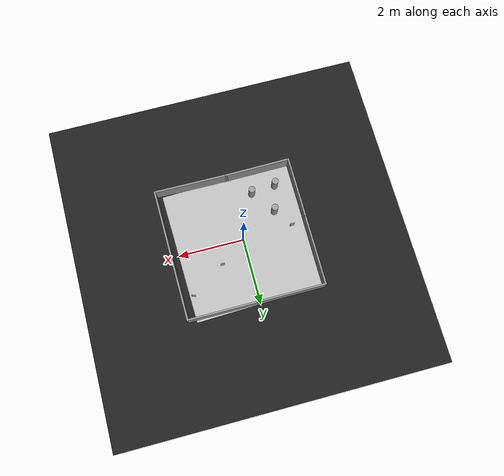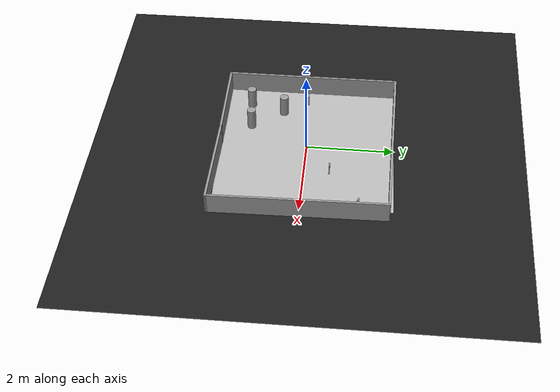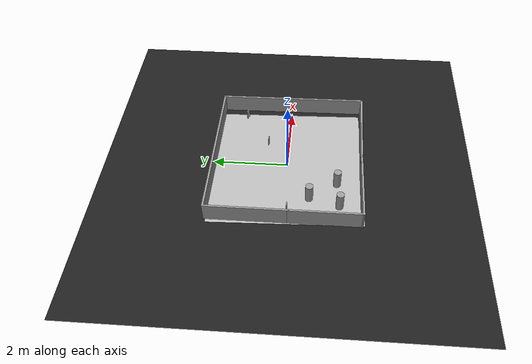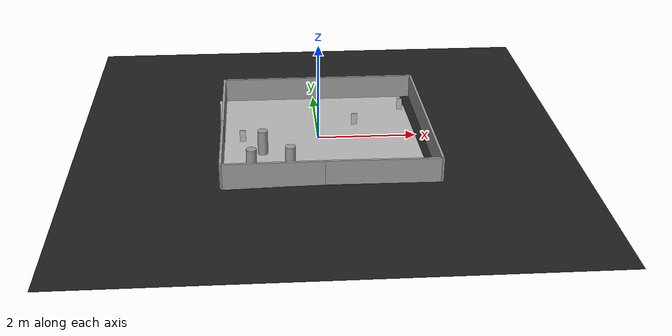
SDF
<sdf version="1.7">
 <world name="default">
  <scene>
   <ambient>0 0 0 1</ambient>
   <shadows>0</shadows>
   <grid>0</grid>
   <background>0.7 0.7 0.7 1</background>
  </scene>
  <model name="course">
   <static>1</static>
   <link name="course_link">
    <collision name="course_collision">
     <geometry><plane><normal>0 0 1</normal><size>4 4</size></plane></geometry>
     <surface><friction><ode><mu>100</mu><mu2>50</mu2></ode></friction></surface>
    </collision>
    <visual name="course_visual">
     <cast_shadows>0</cast_shadows>
     <geometry><plane><normal>0 0 1</normal><size>4 4</size></plane></geometry>
     <material>
      <script>
       <uri>model://turtlebot3_autorace/course/materials/scripts</uri>
       <uri>model://turtlebot3_autorace/course/materials/textures</uri>
       <name>course</name>
      </script>
     </material>
    </visual>
   </link>
   <pose>0 0 0 0 0 -1.54</pose>
  </model>
  <model name="traffic_parking">
   <static>1</static>
   <link name="box">
    <collision name="collision"><geometry><box><size>0.12 0.025 0.25</size></box></geometry></collision>
    <visual name="visual">
     <geometry><box><size>0.12 0.025 0.25</size></box></geometry>
     <material>
      <script>
       <uri>model://turtlebot3_autorace/traffic_parking/materials/scripts</uri>
       <uri>model://turtlebot3_autorace/traffic_parking/materials/textures</uri>
       <name>traffic_parking</name>
      </script>
     </material>
    </visual>
   </link>
   <pose>1.84 1.27 0.13 0 0 -0.356</pose>
  </model>
  <model name="traffic_tunnel">
   <pose>-1.54401 -0.073386 0.125004 -2e-06 -7.1e-05 0.000128</pose>
   <link name="box">
    <collision name="collision"><geometry><box><size>0.12 0.025 0.25</size></box></geometry></collision>
    <visual name="visual">
     <geometry><box><size>0.12 0.025 0.25</size></box></geometry>
     <material>
      <script>
       <uri>model://turtlebot3_autorace/traffic_tunnel/materials/scripts</uri>
       <uri>model://turtlebot3_autorace/traffic_tunnel/materials/textures</uri>
       <name>traffic_tunnel</name>
      </script>
     </material>
    </visual>
    <inertial>
     <inertia><ixx>1</ixx><ixy>0</ixy><ixz>0</ixz><iyy>1</iyy><iyz>0</iyz><izz>1</izz></inertia>
     <mass>1</mass>
    </inertial>
   </link>
  </model>
  <model name="traffic_stop">
   <static>1</static>
   <link name="box">
    <collision name="collision"><geometry><box><size>0.12 0.025 0.25</size></box></geometry></collision>
    <visual name="visual">
     <geometry><box><size>0.12 0.025 0.25</size></box></geometry>
     <material>
      <script>
       <uri>model://turtlebot3_autorace/traffic_stop/materials/scripts</uri>
       <uri>model://turtlebot3_autorace/traffic_stop/materials/textures</uri>
       <name>traffic_stop</name>
      </script>
     </material>
    </visual>
   </link>
   <pose>0.788892 0.578813 0.125 0 -0 0</pose>
  </model>
  <light name="sun" type="directional">
   <pose>0 0 10 0 -0 0</pose>
   <diffuse>0.8 0.8 0.8 1</diffuse>
   <specular>0.1 0.1 0.1 1</specular>
   <attenuation>
    <range>1000</range>
    <constant>0.9</constant>
    <linear>0.01</linear>
    <quadratic>0.001</quadratic>
   </attenuation>
   <direction>-0.5 0.5 -1</direction>
   <spot><inner_angle>0</inner_angle><outer_angle>0</outer_angle><falloff>0</falloff></spot>
  </light>
  <model name="ground2">
   <pose>0.081614 0.024079 -0.1 0 -0 0</pose>
   <static>1</static>
   <link name="ground">
    <collision name="ground_coll"><geometry><box><size>8 8 0.01</size></box></geometry></collision>
    <visual name="ground_vis">
     <geometry><box><size>10 10 0.01</size></box></geometry>
     <material>
      <script><uri>file://media/materials/scripts/gazebo.material</uri><name>Gazebo/FlatBlack</name></script>
     </material>
    </visual>
   </link>
  </model>
  <gravity>0 0 -9.8</gravity>
  <magnetic_field>6e-06 2.3e-05 -4.2e-05</magnetic_field>
  <atmosphere type="adiabatic"/>
  <physics name="default_physics" default="0" type="ode">
   <max_step_size>0.001</max_step_size>
   <real_time_factor>1</real_time_factor>
   <real_time_update_rate>1000</real_time_update_rate>
  </physics>
  <spherical_coordinates>
   <surface_model>EARTH_WGS84</surface_model>
   <latitude_deg>0</latitude_deg>
   <longitude_deg>0</longitude_deg>
   <elevation>0</elevation>
   <heading_deg>0</heading_deg>
  </spherical_coordinates>
  <light name="user_point_light_2" type="point">
   <pose>-0.948146 0.604519 1 0 -0 0</pose>
   <diffuse>0.5 0.5 0.5 1</diffuse>
   <specular>0.1 0.1 0.1 1</specular>
   <attenuation>
    <range>20</range>
    <constant>0.5</constant>
    <linear>0.01</linear>
    <quadratic>0.001</quadratic>
   </attenuation>
   <cast_shadows>0</cast_shadows>
   <direction>0 0 -1</direction>
   <spot><inner_angle>0</inner_angle><outer_angle>0</outer_angle><falloff>0</falloff></spot>
  </light>
  <light name="user_point_light_6" type="point">
   <pose>1.63854 1.69565 1 0 -0 0</pose>
   <diffuse>0.5 0.5 0.5 1</diffuse>
   <specular>0.1 0.1 0.1 1</specular>
   <attenuation>
    <range>20</range>
    <constant>0.5</constant>
    <linear>0.01</linear>
    <quadratic>0.001</quadratic>
   </attenuation>
   <cast_shadows>0</cast_shadows>
   <direction>0 0 -1</direction>
   <spot><inner_angle>0</inner_angle><outer_angle>0</outer_angle><falloff>0</falloff></spot>
  </light>
  <light name="user_point_light_7" type="point">
   <pose>0.42 -3.31 1 0 -0 0</pose>
   <diffuse>0.5 0.5 0.5 1</diffuse>
   <specular>0.1 0.1 0.1 1</specular>
   <attenuation>
    <range>20</range>
    <constant>0.5</constant>
    <linear>0.01</linear>
    <quadratic>0.001</quadratic>
   </attenuation>
   <cast_shadows>0</cast_shadows>
   <direction>0 0 -1</direction>
   <spot><inner_angle>0</inner_angle><outer_angle>0</outer_angle><falloff>0</falloff></spot>
  </light>
  <light name="user_point_light_8" type="point">
   <pose>-1.8 1.5 1 0 -0 0</pose>
   <diffuse>0.5 0.5 0.5 1</diffuse>
   <specular>0.1 0.1 0.1 1</specular>
   <attenuation>
    <range>20</range>
    <constant>0.5</constant>
    <linear>0.01</linear>
    <quadratic>0.001</quadratic>
   </attenuation>
   <cast_shadows>0</cast_shadows>
   <direction>0 0 -1</direction>
   <spot><inner_angle>0</inner_angle><outer_angle>0</outer_angle><falloff>0</falloff></spot>
  </light>
  <model name="tunnel_occ_2_1">
   <link name="link_0_clone_clone">
    <pose>0.42322 -0.212034 0.25 0 -0 0</pose>
    <inertial>
     <mass>0.0416663</mass>
     <inertia>
      <ixx>0.00098188</ixx>
      <ixy>0</ixy>
      <ixz>0</ixz>
      <iyy>0.00098188</iyy>
      <iyz>0</iyz>
      <izz>0.00046751</izz>
     </inertia>
    </inertial>
    <visual name="visual">
     <geometry><cylinder><radius>0.1</radius><length>0.5</length></cylinder></geometry>
     <material>
      <lighting>1</lighting>
      <script><uri>file://media/materials/scripts/gazebo.material</uri><name>Gazebo/Grey</name></script>
      <ambient>0.3 0.3 0.3 1</ambient>
      <diffuse>0.7 0.7 0.7 1</diffuse>
      <specular>0.01 0.01 0.01 1</specular>
      <emissive>0 0 0 1</emissive>
      <shader type="pixel"><normal_map>__default__</normal_map></shader>
     </material>
    </visual>
    <collision name="collision">
     <geometry><cylinder><radius>0.1</radius><length>0.46418</length></cylinder></geometry>
     <surface>
      <friction>
       <ode><mu>1</mu><mu2>1</mu2><fdir1>0 0 0</fdir1><slip1>0</slip1><slip2>0</slip2></ode>
       <torsional>
        <coefficient>1</coefficient>
        <patch_radius>0</patch_radius>
        <surface_radius>0</surface_radius>
        <use_patch_radius>1</use_patch_radius>
        <ode><slip>0</slip></ode>
       </torsional>
      </friction>
      <bounce><restitution_coefficient>0</restitution_coefficient><threshold>1e+06</threshold></bounce>
      <contact>
       <collide_without_contact>0</collide_without_contact>
       <collide_without_contact_bitmask>1</collide_without_contact_bitmask>
       <collide_bitmask>1</collide_bitmask>
       <ode>
        <soft_cfm>0</soft_cfm>
        <soft_erp>0.2</soft_erp>
        <kp>1e+13</kp>
        <kd>1</kd>
        <max_vel>0.01</max_vel>
        <min_depth>0</min_depth>
       </ode>
       <bullet>
        <split_impulse>1</split_impulse>
        <split_impulse_penetration_threshold>-0.01</split_impulse_penetration_threshold>
        <soft_cfm>0</soft_cfm>
        <soft_erp>0.2</soft_erp>
        <kp>1e+13</kp>
        <kd>1</kd>
       </bullet>
      </contact>
     </surface>
    </collision>
   </link>
   <link name="link_0_clone_clone_clone">
    <pose>-0.323729 -0.287563 0.25 0 -0 0</pose>
    <inertial>
     <mass>0.0416663</mass>
     <inertia>
      <ixx>0.00098188</ixx>
      <ixy>0</ixy>
      <ixz>0</ixz>
      <iyy>0.00098188</iyy>
      <iyz>0</iyz>
      <izz>0.00046751</izz>
     </inertia>
    </inertial>
    <visual name="visual">
     <geometry><cylinder><radius>0.1</radius><length>0.5</length></cylinder></geometry>
     <material>
      <lighting>1</lighting>
      <script><uri>file://media/materials/scripts/gazebo.material</uri><name>Gazebo/Grey</name></script>
      <ambient>0.3 0.3 0.3 1</ambient>
      <diffuse>0.7 0.7 0.7 1</diffuse>
      <specular>0.01 0.01 0.01 1</specular>
      <emissive>0 0 0 1</emissive>
      <shader type="pixel"><normal_map>__default__</normal_map></shader>
     </material>
    </visual>
    <collision name="collision">
     <geometry><cylinder><radius>0.1</radius><length>0.46418</length></cylinder></geometry>
     <surface>
      <friction>
       <ode><mu>1</mu><mu2>1</mu2><fdir1>0 0 0</fdir1><slip1>0</slip1><slip2>0</slip2></ode>
       <torsional>
        <coefficient>1</coefficient>
        <patch_radius>0</patch_radius>
        <surface_radius>0</surface_radius>
        <use_patch_radius>1</use_patch_radius>
        <ode><slip>0</slip></ode>
       </torsional>
      </friction>
      <bounce><restitution_coefficient>0</restitution_coefficient><threshold>1e+06</threshold></bounce>
      <contact>
       <collide_without_contact>0</collide_without_contact>
       <collide_without_contact_bitmask>1</collide_without_contact_bitmask>
       <collide_bitmask>1</collide_bitmask>
       <ode>
        <soft_cfm>0</soft_cfm>
        <soft_erp>0.2</soft_erp>
        <kp>1e+13</kp>
        <kd>1</kd>
        <max_vel>0.01</max_vel>
        <min_depth>0</min_depth>
       </ode>
       <bullet>
        <split_impulse>1</split_impulse>
        <split_impulse_penetration_threshold>-0.01</split_impulse_penetration_threshold>
        <soft_cfm>0</soft_cfm>
        <soft_erp>0.2</soft_erp>
        <kp>1e+13</kp>
        <kd>1</kd>
       </bullet>
      </contact>
     </surface>
    </collision>
   </link>
   <link name="link_0_clone_clone_clone_clone">
    <pose>-0.099492 0.499594 0.25 0 -0 0</pose>
    <inertial>
     <mass>0.0416663</mass>
     <inertia>
      <ixx>0.00098188</ixx>
      <ixy>0</ixy>
      <ixz>0</ixz>
      <iyy>0.00098188</iyy>
      <iyz>0</iyz>
      <izz>0.00046751</izz>
     </inertia>
    </inertial>
    <visual name="visual">
     <geometry><cylinder><radius>0.1</radius><length>0.5</length></cylinder></geometry>
     <material>
      <lighting>1</lighting>
      <script><uri>file://media/materials/scripts/gazebo.material</uri><name>Gazebo/Grey</name></script>
      <ambient>0.3 0.3 0.3 1</ambient>
      <diffuse>0.7 0.7 0.7 1</diffuse>
      <specular>0.01 0.01 0.01 1</specular>
      <emissive>0 0 0 1</emissive>
      <shader type="pixel"><normal_map>__default__</normal_map></shader>
     </material>
    </visual>
    <collision name="collision">
     <geometry><cylinder><radius>0.1</radius><length>0.46418</length></cylinder></geometry>
     <surface>
      <friction>
       <ode><mu>1</mu><mu2>1</mu2><fdir1>0 0 0</fdir1><slip1>0</slip1><slip2>0</slip2></ode>
       <torsional>
        <coefficient>1</coefficient>
        <patch_radius>0</patch_radius>
        <surface_radius>0</surface_radius>
        <use_patch_radius>1</use_patch_radius>
        <ode><slip>0</slip></ode>
       </torsional>
      </friction>
      <bounce><restitution_coefficient>0</restitution_coefficient><threshold>1e+06</threshold></bounce>
      <contact>
       <collide_without_contact>0</collide_without_contact>
       <collide_without_contact_bitmask>1</collide_without_contact_bitmask>
       <collide_bitmask>1</collide_bitmask>
       <ode>
        <soft_cfm>0</soft_cfm>
        <soft_erp>0.2</soft_erp>
        <kp>1e+13</kp>
        <kd>1</kd>
        <max_vel>0.01</max_vel>
        <min_depth>0</min_depth>
       </ode>
       <bullet>
        <split_impulse>1</split_impulse>
        <split_impulse_penetration_threshold>-0.01</split_impulse_penetration_threshold>
        <soft_cfm>0</soft_cfm>
        <soft_erp>0.2</soft_erp>
        <kp>1e+13</kp>
        <kd>1</kd>
       </bullet>
      </contact>
     </surface>
    </collision>
   </link>
   <static>1</static>
   <pose>-1.04145 -1.12671 0 0 -0 0</pose>
  </model>
  <model name="autorace">
   <pose>0.14269 -0.01452 0 0 -0 0</pose>
   <link name="Wall_0">
    <collision name="Wall_0_Collision">
     <geometry><box><size>2.27327 0.05 0.5</size></box></geometry>
     <pose>0 0 0.25 0 -0 0</pose>
    </collision>
    <visual name="Wall_0_Visual">
     <pose>0 0 0.25 0 -0 0</pose>
     <geometry><box><size>2.27327 0.05 0.5</size></box></geometry>
     <material>
      <script><uri>file://media/materials/scripts/gazebo.material</uri><name>Gazebo/Grey</name></script>
      <ambient>1 1 1 1</ambient>
     </material>
     <meta><layer>0</layer></meta>
    </visual>
    <pose>0.96881 -1.96698 0 0 -0 -0.010346</pose>
   </link>
   <link name="Wall_3">
    <collision name="Wall_3_Collision">
     <geometry><box><size>4.00713 0.05 0.5</size></box></geometry>
     <pose>0 0 0.25 0 -0 0</pose>
    </collision>
    <visual name="Wall_3_Visual">
     <pose>0 0 0.25 0 -0 0</pose>
     <geometry><box><size>4.00713 0.05 0.5</size></box></geometry>
     <material>
      <script><uri>file://media/materials/scripts/gazebo.material</uri><name>Gazebo/Grey</name></script>
      <ambient>1 1 1 1</ambient>
     </material>
     <meta><layer>0</layer></meta>
    </visual>
    <pose>2.04981 2.4e-05 0 0 -0 1.58621</pose>
   </link>
   <link name="Wall_5">
    <collision name="Wall_5_Collision">
     <geometry><box><size>4.14984 0.05 0.5</size></box></geometry>
     <pose>0 0 0.25 0 -0 0</pose>
    </collision>
    <visual name="Wall_5_Visual">
     <pose>0 0 0.25 0 -0 0</pose>
     <geometry><box><size>4.14984 0.05 0.5</size></box></geometry>
     <material>
      <script><uri>file://media/materials/scripts/gazebo.material</uri><name>Gazebo/Grey</name></script>
      <ambient>1 1 1 1</ambient>
     </material>
     <meta><layer>0</layer></meta>
    </visual>
    <pose>-0.03069 1.97852 0 0 -0 3.14159</pose>
   </link>
   <link name="Wall_7">
    <collision name="Wall_7_Collision">
     <geometry><box><size>2.15034 0.05 0.5</size></box></geometry>
     <pose>0 0 0.25 0 -0 0</pose>
    </collision>
    <visual name="Wall_7_Visual">
     <pose>0 0 0.25 0 -0 0</pose>
     <geometry><box><size>2.15034 0.05 0.5</size></box></geometry>
     <material>
      <script><uri>file://media/materials/scripts/gazebo.material</uri><name>Gazebo/Grey</name></script>
      <ambient>1 1 1 1</ambient>
     </material>
     <meta><layer>0</layer></meta>
    </visual>
    <pose>-2.08069 0.928524 0 0 -0 -1.5708</pose>
   </link>
   <static>1</static>
  </model>
  <model name="Untitled">
   <pose>-0.955 -1.00763 0 0 -0 0</pose>
   <link name="Wall_0">
    <collision name="Wall_0_Collision">
     <geometry><box><size>2.0201 0.05 0.5</size></box></geometry>
     <pose>0 0 0.25 0 -0 0</pose>
    </collision>
    <visual name="Wall_0_Visual">
     <pose>0 0 0.25 0 -0 0</pose>
     <geometry><box><size>2.0201 0.05 0.5</size></box></geometry>
     <material>
      <script><uri>file://media/materials/scripts/gazebo.material</uri><name>Gazebo/Grey</name></script>
      <ambient>1 1 1 1</ambient>
     </material>
     <meta><layer>0</layer></meta>
    </visual>
    <pose>-0 -0.972374 0 0 -0 0.010152</pose>
   </link>
   <link name="Wall_2">
    <collision name="Wall_2_Collision">
     <geometry><box><size>1.9 0.05 0.5</size></box></geometry>
     <pose>0 0 0.25 0 -0 0</pose>
    </collision>
    <visual name="Wall_2_Visual">
     <pose>0 0 0.25 0 -0 0</pose>
     <geometry><box><size>1.9 0.05 0.5</size></box></geometry>
     <material>
      <script><uri>file://media/materials/scripts/gazebo.material</uri><name>Gazebo/Grey</name></script>
      <ambient>1 1 1 1</ambient>
     </material>
     <meta><layer>0</layer></meta>
    </visual>
    <pose>-0.985 -0.057374 0 0 -0 1.5708</pose>
   </link>
   <static>1</static>
  </model>
 </world>
</sdf>
